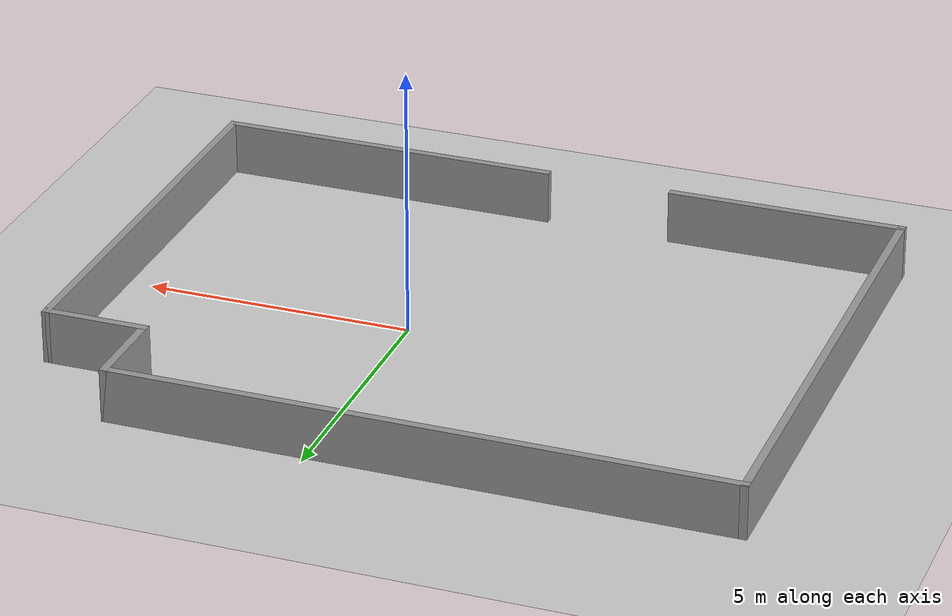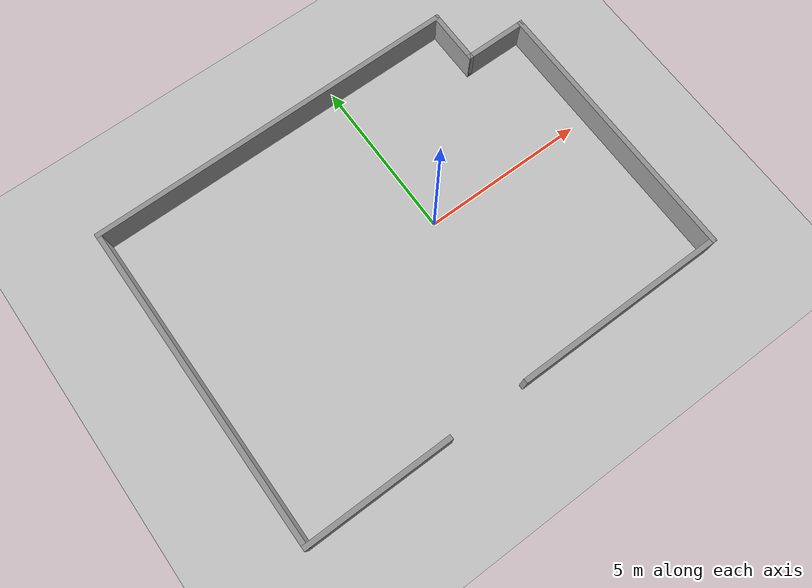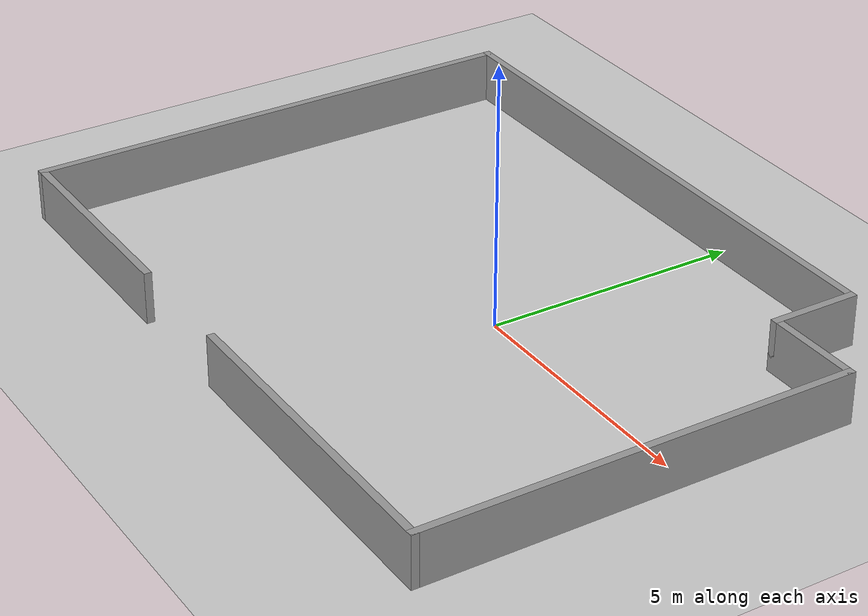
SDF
<sdf version="1.7">
 <world name="default">
  <light name="sun" type="directional">
   <pose>0 0 10 0 -0 0</pose>
   <diffuse>0.8 0.8 0.8 1</diffuse>
   <specular>0.2 0.2 0.2 1</specular>
   <attenuation>
    <range>1000</range>
    <constant>0.9</constant>
    <linear>0.01</linear>
    <quadratic>0.001</quadratic>
   </attenuation>
   <direction>-0.5 0.1 -0.9</direction>
   <spot><inner_angle>0</inner_angle><outer_angle>0</outer_angle><falloff>0</falloff></spot>
  </light>
  <model name="ground_plane">
   <static>1</static>
   <link name="link">
    <collision name="collision">
     <geometry><plane><normal>0 0 1</normal><size>100 100</size></plane></geometry>
     <surface>
      <contact><collide_bitmask>65535</collide_bitmask></contact>
      <friction><ode><mu>100</mu><mu2>50</mu2></ode></friction>
     </surface>
    </collision>
    <visual name="visual">
     <cast_shadows>0</cast_shadows>
     <geometry><plane><normal>0 0 1</normal><size>100 100</size></plane></geometry>
     <material>
      <script><uri>file://media/materials/scripts/gazebo.material</uri><name>Gazebo/Grey</name></script>
     </material>
    </visual>
   </link>
  </model>
  <gravity>0 0 -9.8</gravity>
  <magnetic_field>6e-06 2.3e-05 -4.2e-05</magnetic_field>
  <atmosphere type="adiabatic"/>
  <physics type="ode">
   <max_step_size>0.001</max_step_size>
   <real_time_factor>1</real_time_factor>
   <real_time_update_rate>1000</real_time_update_rate>
  </physics>
  <scene><ambient>0.4 0.4 0.4 1</ambient><background>0.7 0.7 0.7 1</background><shadows>1</shadows></scene>
  <audio><device>default</device></audio>
  <spherical_coordinates>
   <surface_model>EARTH_WGS84</surface_model>
   <latitude_deg>0</latitude_deg>
   <longitude_deg>0</longitude_deg>
   <elevation>0</elevation>
   <heading_deg>0</heading_deg>
  </spherical_coordinates>
  <model name="room_walls">
   <pose>-1.084 -0.115 0 0 -0 0</pose>
   <link name="Wall_1">
    <collision name="Wall_1_Collision">
     <geometry><box><size>4.5 0.15 1</size></box></geometry>
     <pose>0 0 0.5 0 -0 0</pose>
    </collision>
    <visual name="Wall_1_Visual">
     <pose>0 0 0.5 0 -0 0</pose>
     <geometry><box><size>4.5 0.15 1</size></box></geometry>
     <material>
      <script><uri>file://media/materials/scripts/gazebo.material</uri><name>Gazebo/Grey</name></script>
      <ambient>1 1 1 1</ambient>
     </material>
     <meta><layer>0</layer></meta>
    </visual>
    <pose>-4.425 -4.925 0 0 -0 3.14159</pose>
   </link>
   <link name="Wall_2">
    <collision name="Wall_2_Collision">
     <geometry><box><size>10 0.15 1</size></box></geometry>
     <pose>0 0 0.5 0 -0 0</pose>
    </collision>
    <visual name="Wall_2_Visual">
     <pose>0 0 0.5 0 -0 0</pose>
     <geometry><box><size>10 0.15 1</size></box></geometry>
     <material>
      <script><uri>file://media/materials/scripts/gazebo.material</uri><name>Gazebo/Grey</name></script>
      <ambient>1 1 1 1</ambient>
     </material>
     <meta><layer>0</layer></meta>
    </visual>
    <pose>-6.6 -0 0 0 -0 1.5708</pose>
   </link>
   <link name="Wall_3">
    <collision name="Wall_3_Collision">
     <geometry><box><size>11.5 0.15 1</size></box></geometry>
     <pose>0 0 0.5 0 -0 0</pose>
    </collision>
    <visual name="Wall_3_Visual">
     <pose>0 0 0.5 0 -0 0</pose>
     <geometry><box><size>11.5 0.15 1</size></box></geometry>
     <material>
      <script><uri>file://media/materials/scripts/gazebo.material</uri><name>Gazebo/Grey</name></script>
      <ambient>1 1 1 1</ambient>
     </material>
     <meta><layer>0</layer></meta>
    </visual>
    <pose>-0.925 4.925 0 0 -0 0</pose>
   </link>
   <link name="Wall_4">
    <collision name="Wall_4_Collision">
     <geometry><box><size>1.75 0.15 1</size></box></geometry>
     <pose>0 0 0.5 0 -0 0</pose>
    </collision>
    <visual name="Wall_4_Visual">
     <pose>0 0 0.5 0 -0 0</pose>
     <geometry><box><size>1.75 0.15 1</size></box></geometry>
     <material>
      <script><uri>file://media/materials/scripts/gazebo.material</uri><name>Gazebo/Grey</name></script>
      <ambient>1 1 1 1</ambient>
     </material>
     <meta><layer>0</layer></meta>
    </visual>
    <pose>4.75 4.125 0 0 -0 -1.5708</pose>
   </link>
   <link name="Wall_5">
    <collision name="Wall_5_Collision">
     <geometry><box><size>2 0.15 1</size></box></geometry>
     <pose>0 0 0.5 0 -0 0</pose>
    </collision>
    <visual name="Wall_5_Visual">
     <pose>0 0 0.5 0 -0 0</pose>
     <geometry><box><size>2 0.15 1</size></box></geometry>
     <material>
      <script><uri>file://media/materials/scripts/gazebo.material</uri><name>Gazebo/Grey</name></script>
      <ambient>1 1 1 1</ambient>
     </material>
     <meta><layer>0</layer></meta>
    </visual>
    <pose>5.675 3.325 0 0 -0 0</pose>
   </link>
   <link name="Wall_6">
    <collision name="Wall_6_Collision">
     <geometry><box><size>8.4 0.15 1</size></box></geometry>
     <pose>0 0 0.5 0 -0 0</pose>
    </collision>
    <visual name="Wall_6_Visual">
     <pose>0 0 0.5 0 -0 0</pose>
     <geometry><box><size>8.4 0.15 1</size></box></geometry>
     <material>
      <script><uri>file://media/materials/scripts/gazebo.material</uri><name>Gazebo/Grey</name></script>
      <ambient>1 1 1 1</ambient>
     </material>
     <meta><layer>0</layer></meta>
    </visual>
    <pose>6.6 -0.8 0 0 -0 -1.5708</pose>
   </link>
   <link name="Wall_9">
    <collision name="Wall_9_Collision">
     <geometry><box><size>6.5 0.15 1</size></box></geometry>
     <pose>0 0 0.5 0 -0 0</pose>
    </collision>
    <visual name="Wall_9_Visual">
     <pose>0 0 0.5 0 -0 0</pose>
     <geometry><box><size>6.5 0.15 1</size></box></geometry>
     <material>
      <script><uri>file://media/materials/scripts/gazebo.material</uri><name>Gazebo/Grey</name></script>
      <ambient>1 1 1 1</ambient>
     </material>
     <meta><layer>0</layer></meta>
    </visual>
    <pose>3.425 -4.925 0 0 -0 3.14159</pose>
   </link>
   <static>1</static>
  </model>
 </world>
</sdf>
